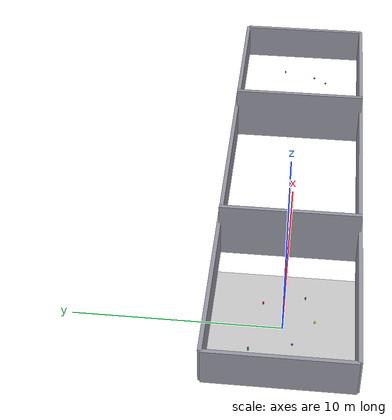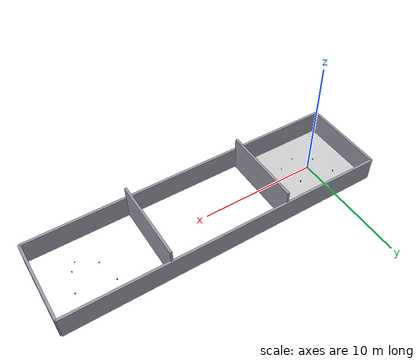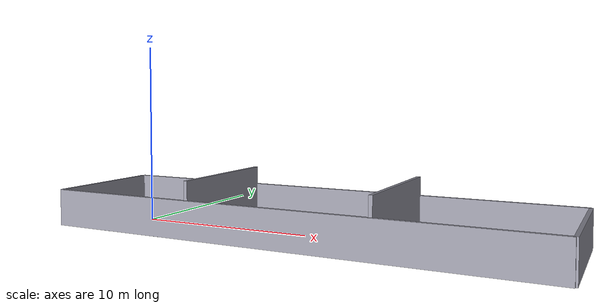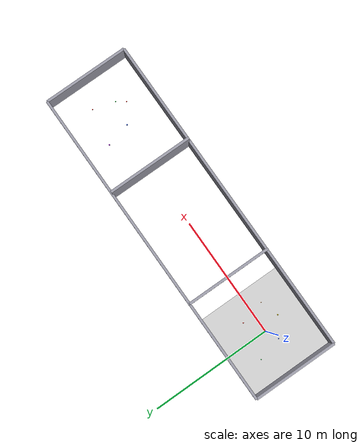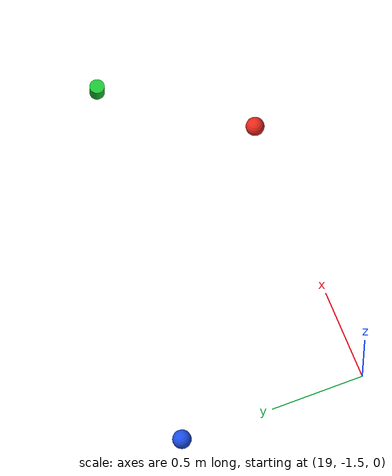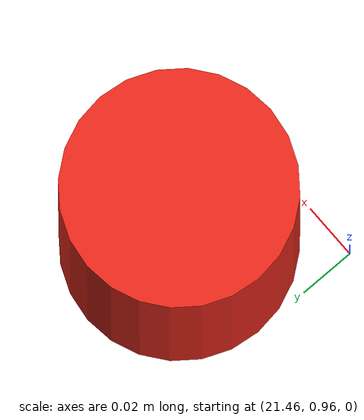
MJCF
<mujoco model="telephone_arena">
  <option timestep="0.005" gravity="0 0 -9.81"/>

  <visual>
    <map znear="0.01" zfar="100"/>
    <quality shadowsize="2048"/>
  </visual>

  <asset>
    <!-- Floor texture -->
    <texture name="floor_tex" type="2d" builtin="checker" width="512" height="512"
             rgb1="0.9 0.9 0.9" rgb2="0.7 0.7 0.7"/>
    <material name="floor_mat" texture="floor_tex" texrepeat="8 8"/>

    <!-- Wall material -->
    <material name="wall_mat" rgba="0.6 0.6 0.65 1"/>

    <!-- Object materials -->
    <material name="red_mat"    rgba="0.9 0.15 0.1 1"/>
    <material name="blue_mat"   rgba="0.1 0.3 0.9 1"/>
    <material name="yellow_mat" rgba="0.95 0.85 0.1 1"/>
    <material name="green_mat"  rgba="0.1 0.75 0.2 1"/>
    <material name="orange_mat" rgba="0.95 0.5 0.05 1"/>
    <material name="purple_mat" rgba="0.6 0.1 0.8 1"/>
  </asset>

  <worldbody>
    <!-- Global light -->
    <light pos="7 0 6" dir="0 0 -1" diffuse="0.8 0.8 0.8" ambient="0.3 0.3 0.3"/>

    <!-- ==================== FLOORS ==================== -->
    <geom type="plane" size="3.5 3.5 0.01" pos="0 0 0" material="floor_mat"/>
    <geom type="plane" size="3.5 3.5 0.01" pos="10 0 0" material="floor_mat"/>
    <geom type="plane" size="3.5 3.5 0.01" pos="20 0 0" material="floor_mat"/>

    <!-- ==================== WALLS ==================== -->
    <!-- Between Room A and Room B -->
    <geom type="box" size="0.1 3.5 1.5" pos="5 0 1.5" material="wall_mat"/>
    <!-- Between Room B and Room C -->
    <geom type="box" size="0.1 3.5 1.5" pos="15 0 1.5" material="wall_mat"/>

    <!-- Outer walls -->
    <geom type="box" size="0.1 3.5 1.0" pos="-3.5 0 1.0" material="wall_mat"/>
    <geom type="box" size="0.1 3.5 1.0" pos="23.5 0 1.0" material="wall_mat"/>
    <geom type="box" size="13.5 0.1 1.0" pos="10 3.5 1.0" material="wall_mat"/>
    <geom type="box" size="13.5 0.1 1.0" pos="10 -3.5 1.0" material="wall_mat"/>

    <!-- ==================== ROOM A OBJECTS ==================== -->
    <!-- Red mug (cylinder) -->
    <body name="red_mug" pos="1.5 1.0 0.06">
      <geom type="cylinder" size="0.04 0.06" material="red_mat"/>
    </body>

    <!-- Blue ball -->
    <body name="blue_ball" pos="-1.0 -0.5 0.05">
      <geom type="sphere" size="0.05" material="blue_mat"/>
    </body>

    <!-- Yellow cube -->
    <body name="yellow_cube" pos="0.5 -1.5 0.04">
      <geom type="box" size="0.04 0.04 0.04" material="yellow_mat"/>
    </body>

    <!-- Green bottle (tall cylinder) -->
    <body name="green_bottle" pos="-1.5 1.5 0.1">
      <geom type="cylinder" size="0.03 0.10" material="green_mat"/>
    </body>

    <!-- Orange cone (capsule approximation) -->
    <body name="orange_cone" pos="2.0 -1.0 0.06">
      <geom type="capsule" size="0.03 0.06" material="orange_mat"/>
    </body>

    <!-- ==================== ROOM C OBJECTS ==================== -->
    <!-- Matching objects (targets) -->
    <body name="red_mug_c" pos="21.5 1.0 0.06">
      <geom type="cylinder" size="0.04 0.06" material="red_mat"/>
    </body>

    <body name="blue_ball_c" pos="19.0 -0.5 0.05">
      <geom type="sphere" size="0.05" material="blue_mat"/>
    </body>

    <!-- Decoy objects (similar but different) -->
    <body name="red_ball_decoy" pos="20.5 -1.5 0.05">
      <geom type="sphere" size="0.05" material="red_mat"/>
    </body>

    <body name="purple_cube_decoy" pos="18.5 1.5 0.04">
      <geom type="box" size="0.04 0.04 0.04" material="purple_mat"/>
    </body>

    <body name="green_cylinder_decoy" pos="21.0 -0.8 0.06">
      <geom type="cylinder" size="0.04 0.04" material="green_mat"/>
    </body>

  </worldbody>
</mujoco>
